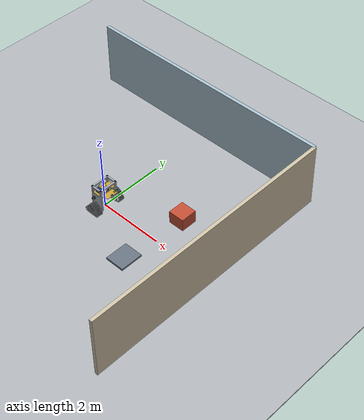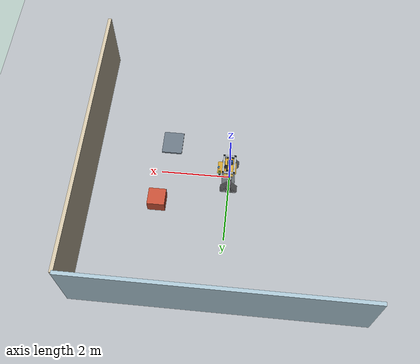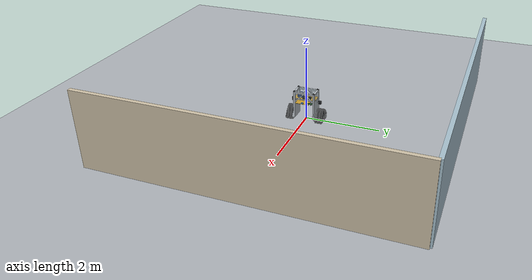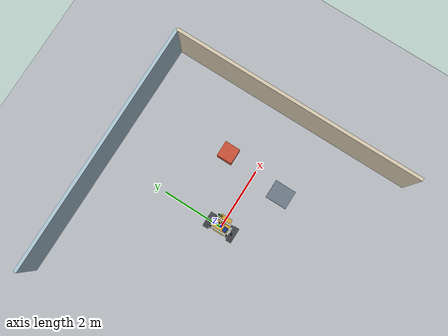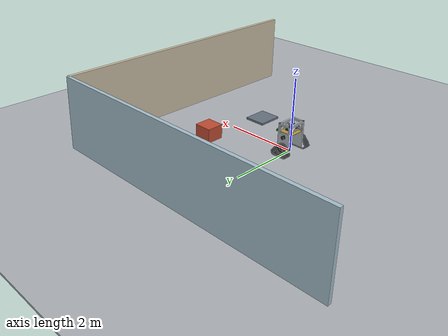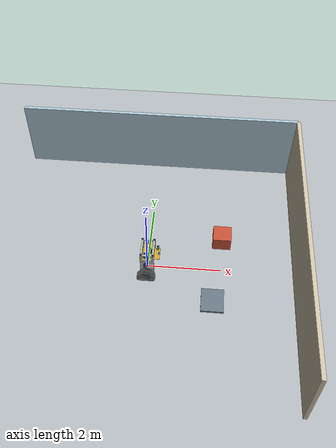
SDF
<?xml version='1.0' encoding='utf-8'?>
<sdf version="1.9">
  <world name="robot_test">
    <gravity>0 0 -9.81</gravity>
    <physics name="1ms" type="ignored">
      <max_step_size>0.001</max_step_size>
      <real_time_factor>1</real_time_factor>
    </physics>
    <plugin name="gz::sim::systems::Physics" filename="gz-sim-physics-system" />
    <plugin name="gz::sim::systems::UserCommands" filename="gz-sim-user-commands-system" />
    <plugin name="gz::sim::systems::SceneBroadcaster" filename="gz-sim-scene-broadcaster-system" />
    <plugin name="gz::sim::systems::Sensors" filename="gz-sim-sensors-system">
      <render_engine>ogre2</render_engine>
    </plugin>
    <plugin name="gz::sim::systems::Imu" filename="gz-sim-imu-system" />
    <scene>
      <ambient>0.6 0.6 0.6 1</ambient>
      <background>0.85 0.9 0.95 1</background>
      <shadows>true</shadows>
    </scene>
    <light name="sun" type="directional">
      <pose>0 0 10 0 0 0</pose>
      <direction>-0.5 0.2 -1</direction>
      <diffuse>0.9 0.9 0.9 1</diffuse>
      <specular>0.2 0.2 0.2 1</specular>
      <cast_shadows>true</cast_shadows>
    </light>
    <model name="ground">
      <static>true</static>
      <link name="ground_link">
        <collision name="ground">
          <pose>0 0 -0.025 0 0 0</pose>
          <geometry>
            <box>
              <size>30 30 0.05</size>
            </box>
          </geometry>
          <surface>
            <friction>
              <ode>
                <mu>1</mu>
                <mu2>1</mu2>
                <fdir1>1 0 0</fdir1>
              </ode>
            </friction>
          </surface>
        </collision>
        <visual name="ground">
          <pose>0 0 -0.025 0 0 0</pose>
          <geometry>
            <box>
              <size>30 30 0.05</size>
            </box>
          </geometry>
          <material>
            <ambient>0.68 0.7 0.72 1</ambient>
            <diffuse>0.68 0.7 0.72 1</diffuse>
            <specular>0.3 0.3 0.3 1</specular>
          </material>
        </visual>
      </link>
    </model>
    <model name="wall_a">
      <static>true</static>
      <pose>4 0 1 0 0 0</pose>
      <link name="link">
        <collision name="collision">
          <pose>0 0 0 0 0 0</pose>
          <geometry>
            <box>
              <size>0.1 8 2</size>
            </box>
          </geometry>
        </collision>
        <visual name="visual">
          <pose>0 0 0 0 0 0</pose>
          <geometry>
            <box>
              <size>0.1 8 2</size>
            </box>
          </geometry>
          <material>
            <ambient>0.8 0.75 0.65 1</ambient>
            <diffuse>0.8 0.75 0.65 1</diffuse>
            <specular>0.3 0.3 0.3 1</specular>
          </material>
        </visual>
      </link>
    </model>
    <model name="wall_b">
      <static>true</static>
      <pose>0 4 1 0 0 0</pose>
      <link name="link">
        <collision name="collision">
          <pose>0 0 0 0 0 0</pose>
          <geometry>
            <box>
              <size>8 0.1 2</size>
            </box>
          </geometry>
        </collision>
        <visual name="visual">
          <pose>0 0 0 0 0 0</pose>
          <geometry>
            <box>
              <size>8 0.1 2</size>
            </box>
          </geometry>
          <material>
            <ambient>0.65 0.75 0.8 1</ambient>
            <diffuse>0.65 0.75 0.8 1</diffuse>
            <specular>0.3 0.3 0.3 1</specular>
          </material>
        </visual>
      </link>
    </model>
    <model name="obstacle">
      <static>true</static>
      <pose>2 1 0.2 0 0 0</pose>
      <link name="link">
        <collision name="collision">
          <pose>0 0 0 0 0 0</pose>
          <geometry>
            <box>
              <size>0.5 0.5 0.4</size>
            </box>
          </geometry>
        </collision>
        <visual name="visual">
          <pose>0 0 0 0 0 0</pose>
          <geometry>
            <box>
              <size>0.5 0.5 0.4</size>
            </box>
          </geometry>
          <material>
            <ambient>0.75 0.3 0.2 1</ambient>
            <diffuse>0.75 0.3 0.2 1</diffuse>
            <specular>0.3 0.3 0.3 1</specular>
          </material>
        </visual>
      </link>
    </model>
    <model name="low_step">
      <static>true</static>
      <pose>1.8 -1 0.03 0 0 0</pose>
      <link name="link">
        <collision name="collision">
          <pose>0 0 0 0 0 0</pose>
          <geometry>
            <box>
              <size>0.6 0.7 0.06</size>
            </box>
          </geometry>
        </collision>
        <visual name="visual">
          <pose>0 0 0 0 0 0</pose>
          <geometry>
            <box>
              <size>0.6 0.7 0.06</size>
            </box>
          </geometry>
          <material>
            <ambient>0.4 0.45 0.5 1</ambient>
            <diffuse>0.4 0.45 0.5 1</diffuse>
            <specular>0.3 0.3 0.3 1</specular>
          </material>
        </visual>
      </link>
    </model>
    <include>
      <uri>model://robot</uri>
      <name>robot</name>
      <pose>0 0 0.01 0 0 0</pose>
    </include>
  </world>
</sdf>
